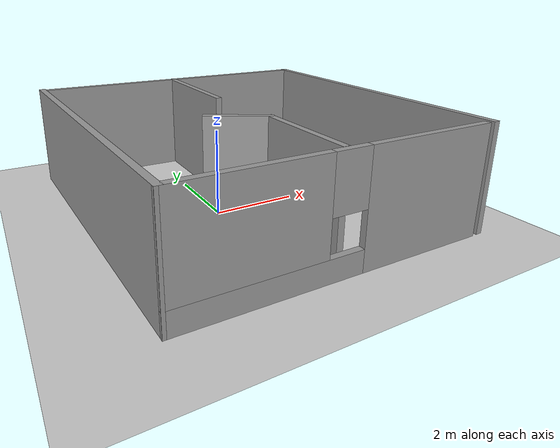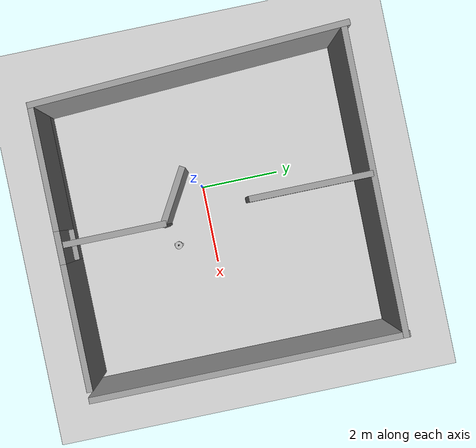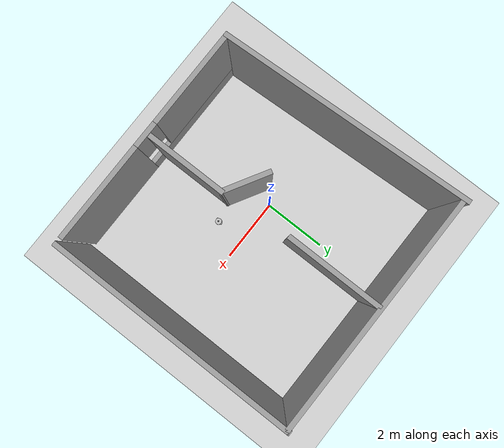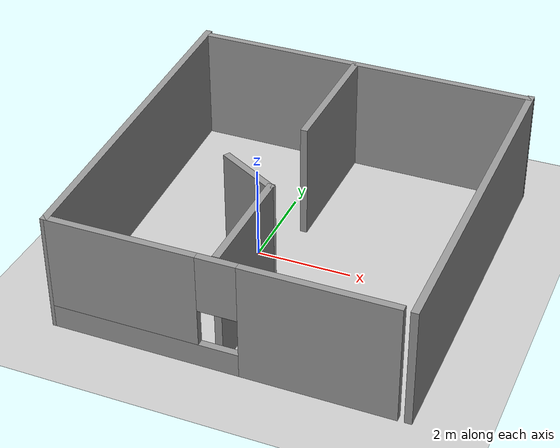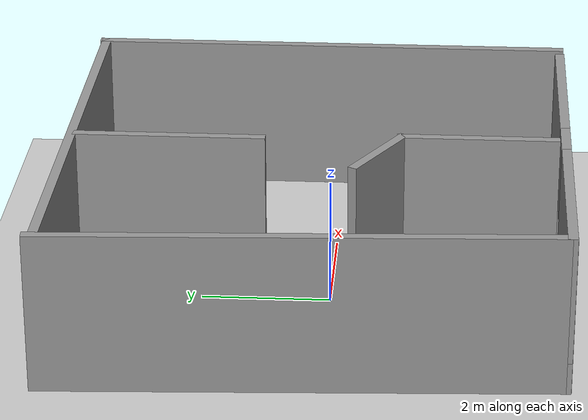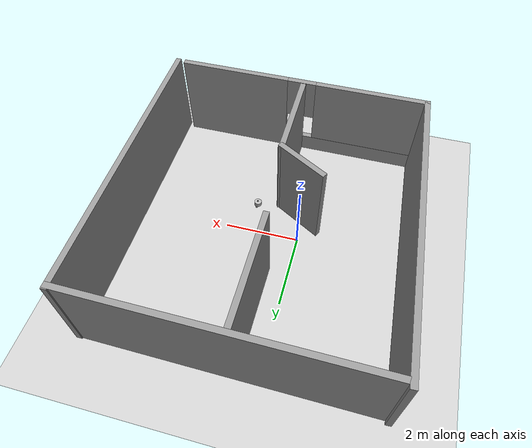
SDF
<sdf version="1.7">
 <world name="default">
  <light name="sun" type="directional">
   <pose>0 0 10 0 -0 0</pose>
   <diffuse>0.8 0.8 0.8 1</diffuse>
   <specular>0.2 0.2 0.2 1</specular>
   <attenuation>
    <range>1000</range>
    <constant>0.9</constant>
    <linear>0.01</linear>
    <quadratic>0.001</quadratic>
   </attenuation>
   <direction>-0.5 0.1 -0.9</direction>
   <spot><inner_angle>0</inner_angle><outer_angle>0</outer_angle><falloff>0</falloff></spot>
  </light>
  <model name="ground_plane">
   <static>1</static>
   <link name="link">
    <collision name="collision">
     <geometry><plane><normal>0 0 1</normal><size>100 100</size></plane></geometry>
     <surface><friction><ode><mu>100</mu><mu2>50</mu2></ode></friction></surface>
    </collision>
    <visual name="visual">
     <cast_shadows>0</cast_shadows>
     <geometry><plane><normal>0 0 1</normal><size>100 100</size></plane></geometry>
     <material>
      <script><uri>file://media/materials/scripts/gazebo.material</uri><name>Gazebo/Grey</name></script>
     </material>
    </visual>
   </link>
  </model>
  <gravity>0 0 -9.8</gravity>
  <magnetic_field>6e-06 2.3e-05 -4.2e-05</magnetic_field>
  <atmosphere type="adiabatic"/>
  <physics type="ode">
   <max_step_size>0.001</max_step_size>
   <real_time_factor>1</real_time_factor>
   <real_time_update_rate>1000</real_time_update_rate>
  </physics>
  <scene><ambient>0.4 0.4 0.4 1</ambient><background>0.7 0.7 0.7 1</background><shadows>1</shadows></scene>
  <spherical_coordinates>
   <surface_model>EARTH_WGS84</surface_model>
   <latitude_deg>0</latitude_deg>
   <longitude_deg>0</longitude_deg>
   <elevation>0</elevation>
   <heading_deg>0</heading_deg>
  </spherical_coordinates>
  <model name="fishbot">
   <link name="base_footprint">
    <inertial>
     <pose>0.002857 0 0.095 0 -0 0</pose>
     <mass>0.42</mass>
     <inertia>
      <ixx>0.0134043</ixx>
      <ixy>0</ixy>
      <ixz>0.000114</ixz>
      <iyy>0.0134728</iyy>
      <iyz>0</iyz>
      <izz>0.0211486</izz>
     </inertia>
    </inertial>
    <collision name="base_footprint_fixed_joint_lump__base_link_collision">
     <pose>0 0 0.076 0 -0 0</pose>
     <geometry><cylinder><length>0.12</length><radius>0.1</radius></cylinder></geometry>
    </collision>
    <collision name="base_footprint_fixed_joint_lump__caster_link_collision_1">
     <pose>0.06 0 0 1.57079 -0 0</pose>
     <geometry><sphere><radius>0.016</radius></sphere></geometry>
     <surface>
      <contact><ode><kp>1e+06</kp><kd>10</kd></ode></contact>
      <friction><ode><mu>0</mu><mu2>0</mu2></ode></friction>
     </surface>
    </collision>
    <collision name="base_footprint_fixed_joint_lump__imu_link_collision_2">
     <pose>0 0 0.096 0 -0 0</pose>
     <geometry><box><size>0.02 0.02 0.02</size></box></geometry>
    </collision>
    <collision name="base_footprint_fixed_joint_lump__laser_link_collision_3">
     <pose>0 0 0.151 0 -0 0</pose>
     <geometry><cylinder><length>0.02</length><radius>0.02</radius></cylinder></geometry>
    </collision>
    <visual name="base_footprint_fixed_joint_lump__base_link_visual">
     <pose>0 0 0.076 0 -0 0</pose>
     <geometry><cylinder><length>0.12</length><radius>0.1</radius></cylinder></geometry>
    </visual>
    <visual name="base_footprint_fixed_joint_lump__caster_link_visual_1">
     <pose>0.06 0 0 1.57079 -0 0</pose>
     <geometry><sphere><radius>0.016</radius></sphere></geometry>
     <material>
      <script><name>Gazebo/Black</name><uri>file://media/materials/scripts/gazebo.material</uri></script>
     </material>
    </visual>
    <visual name="base_footprint_fixed_joint_lump__imu_link_visual_2">
     <pose>0 0 0.096 0 -0 0</pose>
     <geometry><box><size>0.02 0.02 0.02</size></box></geometry>
    </visual>
    <visual name="base_footprint_fixed_joint_lump__laser_link_visual_3">
     <pose>0 0 0.151 0 -0 0</pose>
     <geometry><cylinder><length>0.02</length><radius>0.02</radius></cylinder></geometry>
     <material>
      <script><name>Gazebo/Black</name><uri>file://media/materials/scripts/gazebo.material</uri></script>
     </material>
    </visual>
    <sensor name="imu_sensor" type="imu">
     <plugin name="imu_plugin" filename="libgazebo_ros_imu_sensor.so">
      <ros><namespace>/</namespace><remapping>~/out:=imu</remapping></ros>
      <initial_orientation_as_reference>0</initial_orientation_as_reference>
     </plugin>
     <always_on>1</always_on>
     <update_rate>100</update_rate>
     <visualize>1</visualize>
     <imu>
      <angular_velocity>
       <x>
        <noise type="gaussian">
         <mean>0</mean>
         <stddev>0.0002</stddev>
         <bias_mean>7.5e-06</bias_mean>
         <bias_stddev>8e-07</bias_stddev>
        </noise>
       </x>
       <y>
        <noise type="gaussian">
         <mean>0</mean>
         <stddev>0.0002</stddev>
         <bias_mean>7.5e-06</bias_mean>
         <bias_stddev>8e-07</bias_stddev>
        </noise>
       </y>
       <z>
        <noise type="gaussian">
         <mean>0</mean>
         <stddev>0.0002</stddev>
         <bias_mean>7.5e-06</bias_mean>
         <bias_stddev>8e-07</bias_stddev>
        </noise>
       </z>
      </angular_velocity>
      <linear_acceleration>
       <x>
        <noise type="gaussian">
         <mean>0</mean>
         <stddev>0.017</stddev>
         <bias_mean>0.1</bias_mean>
         <bias_stddev>0.001</bias_stddev>
        </noise>
       </x>
       <y>
        <noise type="gaussian">
         <mean>0</mean>
         <stddev>0.017</stddev>
         <bias_mean>0.1</bias_mean>
         <bias_stddev>0.001</bias_stddev>
        </noise>
       </y>
       <z>
        <noise type="gaussian">
         <mean>0</mean>
         <stddev>0.017</stddev>
         <bias_mean>0.1</bias_mean>
         <bias_stddev>0.001</bias_stddev>
        </noise>
       </z>
      </linear_acceleration>
     </imu>
     <pose>0 0 0.096 0 -0 0</pose>
    </sensor>
    <sensor name="laser_sensor" type="ray">
     <always_on>1</always_on>
     <visualize>1</visualize>
     <update_rate>5</update_rate>
     <ray>
      <scan>
       <horizontal>
        <samples>360</samples>
        <resolution>1</resolution>
        <min_angle>0</min_angle>
        <max_angle>6.28</max_angle>
       </horizontal>
       <vertical><samples>1</samples><min_angle>0</min_angle><max_angle>0</max_angle></vertical>
      </scan>
      <range><min>0.12</min><max>3.5</max><resolution>0.015</resolution></range>
      <noise><type>gaussian</type><mean>0</mean><stddev>0.01</stddev></noise>
     </ray>
     <plugin name="laserscan" filename="libgazebo_ros_ray_sensor.so">
      <ros><remapping>~/out:=scan</remapping></ros>
      <output_type>sensor_msgs/LaserScan</output_type>
      <frame_name>laser_link</frame_name>
     </plugin>
     <pose>0 0 0.151 0 -0 0</pose>
    </sensor>
   </link>
   <joint name="left_wheel_joint" type="revolute">
    <pose relative_to="base_footprint">-0.02 0.1 0.016 0 -0 0</pose>
    <parent>base_footprint</parent>
    <child>left_wheel_link</child>
    <axis>
     <xyz>0 1 0</xyz>
     <limit><lower>-1e+16</lower><upper>1e+16</upper></limit>
     <dynamics><spring_reference>0</spring_reference><spring_stiffness>0</spring_stiffness></dynamics>
    </axis>
   </joint>
   <link name="left_wheel_link">
    <pose relative_to="left_wheel_joint">0 0 0 0 -0 0</pose>
    <inertial>
     <mass>0.2</mass>
     <inertia>
      <ixx>0.000190417</ixx>
      <ixy>0</ixy>
      <ixz>0</ixz>
      <iyy>0.0001904</iyy>
      <iyz>0</iyz>
      <izz>0.00036</izz>
     </inertia>
    </inertial>
    <collision name="left_wheel_link_collision">
     <pose>0 0 0 1.57079 -0 0</pose>
     <geometry><cylinder><length>0.04</length><radius>0.032</radius></cylinder></geometry>
    </collision>
    <visual name="left_wheel_link_visual">
     <pose>0 0 0 1.57079 -0 0</pose>
     <geometry><cylinder><length>0.04</length><radius>0.032</radius></cylinder></geometry>
    </visual>
   </link>
   <joint name="right_wheel_joint" type="revolute">
    <pose relative_to="base_footprint">-0.02 -0.1 0.016 0 -0 0</pose>
    <parent>base_footprint</parent>
    <child>right_wheel_link</child>
    <axis>
     <xyz>0 1 0</xyz>
     <limit><lower>-1e+16</lower><upper>1e+16</upper></limit>
     <dynamics><spring_reference>0</spring_reference><spring_stiffness>0</spring_stiffness></dynamics>
    </axis>
   </joint>
   <link name="right_wheel_link">
    <pose relative_to="right_wheel_joint">0 0 0 0 -0 0</pose>
    <inertial>
     <mass>0.2</mass>
     <inertia>
      <ixx>0.000190417</ixx>
      <ixy>0</ixy>
      <ixz>0</ixz>
      <iyy>0.0001904</iyy>
      <iyz>0</iyz>
      <izz>0.00036</izz>
     </inertia>
    </inertial>
    <collision name="right_wheel_link_collision">
     <pose>0 0 0 1.57079 -0 0</pose>
     <geometry><cylinder><length>0.04</length><radius>0.032</radius></cylinder></geometry>
    </collision>
    <visual name="right_wheel_link_visual">
     <pose>0 0 0 1.57079 -0 0</pose>
     <geometry><cylinder><length>0.04</length><radius>0.032</radius></cylinder></geometry>
    </visual>
   </link>
   <static>0</static>
   <plugin name="diff_drive" filename="libgazebo_ros_diff_drive.so">
    <ros><namespace>/</namespace><remapping>cmd_vel:=cmd_vel</remapping><remapping>odom:=odom</remapping></ros>
    <update_rate>30</update_rate>
    <left_joint>left_wheel_joint</left_joint>
    <right_joint>right_wheel_joint</right_joint>
    <wheel_separation>0.2</wheel_separation>
    <wheel_diameter>0.065</wheel_diameter>
    <max_wheel_torque>20</max_wheel_torque>
    <max_wheel_acceleration>1.0</max_wheel_acceleration>
    <publish_odom>1</publish_odom>
    <publish_odom_tf>1</publish_odom_tf>
    <publish_wheel_tf>0</publish_wheel_tf>
    <odometry_frame>odom</odometry_frame>
    <robot_base_frame>base_footprint</robot_base_frame>
   </plugin>
   <plugin name="fishbot_joint_state" filename="libgazebo_ros_joint_state_publisher.so">
    <ros><remapping>~/out:=joint_states</remapping></ros>
    <update_rate>30</update_rate>
    <joint_name>right_wheel_joint</joint_name>
    <joint_name>left_wheel_joint</joint_name>
   </plugin>
   <pose>1.36479 -0.922487 0.016 1e-06 1.5e-05 -0.244961</pose>
  </model>
  <model name="fishbot-my.world">
   <pose>0.707132 0.295927 0 0 -0 0</pose>
   <link name="Wall_0">
    <collision name="Wall_0_Collision">
     <geometry><box><size>7.88138 0.15 2.5</size></box></geometry>
     <pose>0 0 1.25 0 -0 0</pose>
    </collision>
    <visual name="Wall_0_Visual">
     <pose>0 0 1.25 0 -0 0</pose>
     <geometry><box><size>7.88138 0.15 2.5</size></box></geometry>
     <material>
      <script><uri>file://media/materials/scripts/gazebo.material</uri><name>Gazebo/Grey</name></script>
      <ambient>1 1 1 1</ambient>
     </material>
     <meta><layer>0</layer></meta>
    </visual>
    <pose>-3.55755 0 0 0 -0 -1.52261</pose>
   </link>
   <link name="Wall_10">
    <collision name="Wall_10_Collision">
     <geometry><box><size>3 0.15 2.5</size></box></geometry>
     <pose>0 0 1.25 0 -0 0</pose>
    </collision>
    <visual name="Wall_10_Visual">
     <pose>0 0 1.25 0 -0 0</pose>
     <geometry><box><size>3 0.15 2.5</size></box></geometry>
     <material>
      <script><uri>file://media/materials/scripts/gazebo.material</uri><name>Gazebo/Grey</name></script>
      <ambient>1 1 1 1</ambient>
     </material>
     <meta><layer>0</layer></meta>
    </visual>
    <pose>-0.136794 2.24591 0 0 -0 1.5708</pose>
   </link>
   <link name="Wall_12">
    <collision name="Wall_12_Collision">
     <geometry><box><size>2.5 0.15 2.5</size></box></geometry>
     <pose>0 0 1.25 0 -0 0</pose>
    </collision>
    <visual name="Wall_12_Visual">
     <pose>0 0 1.25 0 -0 0</pose>
     <geometry><box><size>2.5 0.15 2.5</size></box></geometry>
     <material>
      <script><uri>file://media/materials/scripts/gazebo.material</uri><name>Gazebo/Grey</name></script>
      <ambient>1 1 1 1</ambient>
     </material>
     <meta><layer>0</layer></meta>
    </visual>
    <pose>0.022807 -2.52612 0 0 -0 1.5708</pose>
   </link>
   <link name="Wall_13">
    <collision name="Wall_13_Collision">
     <geometry><box><size>1.5 0.15 2.5</size></box></geometry>
     <pose>0 0 1.25 0 -0 0</pose>
    </collision>
    <visual name="Wall_13_Visual">
     <pose>0 0 1.25 0 -0 0</pose>
     <geometry><box><size>1.5 0.15 2.5</size></box></geometry>
     <material>
      <script><uri>file://media/materials/scripts/gazebo.material</uri><name>Gazebo/Grey</name></script>
      <ambient>1 1 1 1</ambient>
     </material>
     <meta><layer>0</layer></meta>
    </visual>
    <pose>-0.56176 -1.01362 0 0 -0 2.61799</pose>
   </link>
   <link name="Wall_2">
    <pose>0.053649 -3.8612 0 0 -0 3.14159</pose>
    <visual name="Wall_2_Visual_0">
     <pose>-1.96118 0 1.25 0 -0 0</pose>
     <geometry><box><size>3.07764 0.15 2.5</size></box></geometry>
     <material>
      <script><uri>file://media/materials/scripts/gazebo.material</uri><name>Gazebo/Grey</name></script>
      <ambient>1 1 1 1</ambient>
     </material>
     <meta><layer>0</layer></meta>
    </visual>
    <collision name="Wall_2_Collision_0">
     <geometry><box><size>3.07764 0.15 2.5</size></box></geometry>
     <pose>-1.96118 0 1.25 0 -0 0</pose>
    </collision>
    <visual name="Wall_2_Visual_1">
     <pose>1.53882 0 0.25 0 -0 0</pose>
     <geometry><box><size>3.92236 0.15 0.5</size></box></geometry>
     <material>
      <script><uri>file://media/materials/scripts/gazebo.material</uri><name>Gazebo/Grey</name></script>
      <ambient>1 1 1 1</ambient>
     </material>
     <meta><layer>0</layer></meta>
    </visual>
    <collision name="Wall_2_Collision_1">
     <geometry><box><size>3.92236 0.15 0.5</size></box></geometry>
     <pose>1.53882 0 0.25 0 -0 0</pose>
    </collision>
    <visual name="Wall_2_Visual_2">
     <pose>1.93882 0 1.5 0 -0 0</pose>
     <geometry><box><size>3.12236 0.15 2</size></box></geometry>
     <material>
      <script><uri>file://media/materials/scripts/gazebo.material</uri><name>Gazebo/Grey</name></script>
      <ambient>1 1 1 1</ambient>
     </material>
     <meta><layer>0</layer></meta>
    </visual>
    <collision name="Wall_2_Collision_2">
     <geometry><box><size>3.12236 0.15 2</size></box></geometry>
     <pose>1.93882 0 1.5 0 -0 0</pose>
    </collision>
    <visual name="Wall_2_Visual_3">
     <pose>-0.022358 0 1.9 0 -0 0</pose>
     <geometry><box><size>0.8 0.15 1.2</size></box></geometry>
     <material>
      <script><uri>file://media/materials/scripts/gazebo.material</uri><name>Gazebo/Grey</name></script>
      <ambient>1 1 1 1</ambient>
     </material>
     <meta><layer>0</layer></meta>
    </visual>
    <collision name="Wall_2_Collision_3">
     <geometry><box><size>0.8 0.15 1.2</size></box></geometry>
     <pose>-0.022358 0 1.9 0 -0 0</pose>
    </collision>
   </link>
   <link name="Wall_6">
    <collision name="Wall_6_Collision">
     <geometry><box><size>7.5 0.15 2.5</size></box></geometry>
     <pose>0 0 1.25 0 -0 0</pose>
    </collision>
    <visual name="Wall_6_Visual">
     <pose>0 0 1.25 0 -0 0</pose>
     <geometry><box><size>7.5 0.15 2.5</size></box></geometry>
     <material>
      <script><uri>file://media/materials/scripts/gazebo.material</uri><name>Gazebo/Grey</name></script>
      <ambient>1 1 1 1</ambient>
     </material>
     <meta><layer>0</layer></meta>
    </visual>
    <pose>0.071835 3.74693 0 0 -0 3.13435</pose>
   </link>
   <link name="Wall_8">
    <collision name="Wall_8_Collision">
     <geometry><box><size>7.75 0.15 2.5</size></box></geometry>
     <pose>0 0 1.25 0 -0 0</pose>
    </collision>
    <visual name="Wall_8_Visual">
     <pose>0 0 1.25 0 -0 0</pose>
     <geometry><box><size>7.75 0.15 2.5</size></box></geometry>
     <material>
      <script><uri>file://media/materials/scripts/gazebo.material</uri><name>Gazebo/Grey</name></script>
      <ambient>1 1 1 1</ambient>
     </material>
     <meta><layer>0</layer></meta>
    </visual>
    <pose>3.74683 -0.053068 0 0 -0 1.5708</pose>
   </link>
   <static>1</static>
  </model>
 </world>
</sdf>
